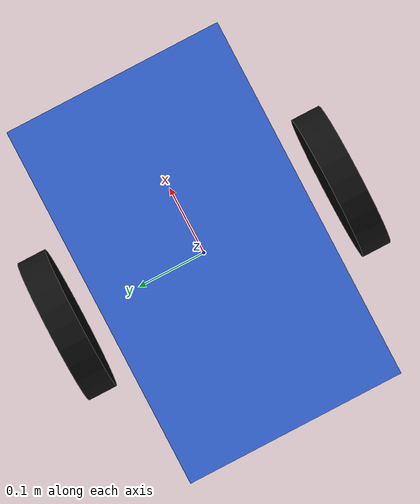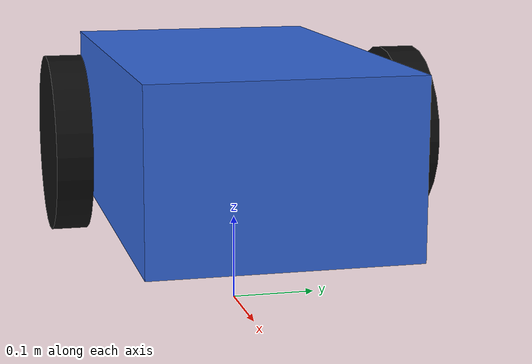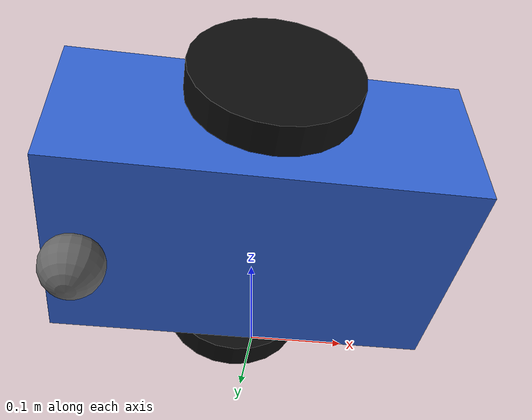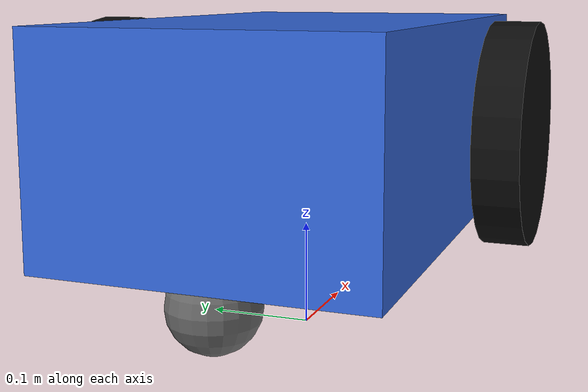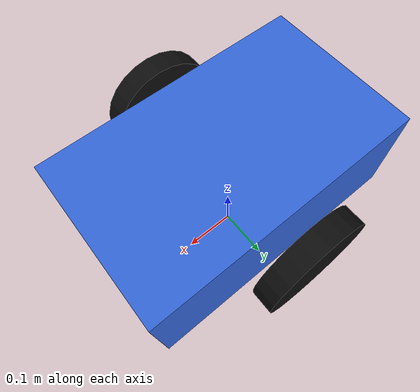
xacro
<?xml version="1.0"?>
<robot xmlns:xacro="http://www.ros.org/wiki/xacro" name="scoutbot">

  <xacro:arg name="use_sim"          default="true"/>
  <xacro:arg name="controllers_yaml" default="$(find scoutbot_control)/config/controllers.yaml"/>

  <xacro:property name="wheel_radius"      value="0.10"/>   <!-- 10 cm -->
  <xacro:property name="wheel_thickness"   value="0.04"/>
  <xacro:property name="wheel_separation"  value="0.40"/>   <!-- track width, m -->
  <xacro:property name="chassis_length"    value="0.50"/>
  <xacro:property name="chassis_width"     value="0.30"/>
  <xacro:property name="chassis_height"    value="0.20"/>
  <xacro:property name="chassis_mass"      value="6.0"/>
  <xacro:property name="wheel_mass"        value="0.5"/>
  <xacro:property name="caster_radius"     value="0.04"/>
  <xacro:property name="caster_mass"       value="0.10"/>

  <!-- Place wheels on the chassis side, at chassis_height/2 down so wheel
       bottom aligns with chassis bottom. -->
  <xacro:property name="wheel_z_offset"   value="${-chassis_height/2 + wheel_radius}"/>

  <!-- =========================================================================
       Reusable inertial macro: solid box.
       ========================================================================= -->
  <xacro:macro name="box_inertia" params="m x y z">
    <inertial>
      <mass value="${m}"/>
      <inertia
        ixx="${m*(y*y + z*z)/12.0}" ixy="0" ixz="0"
        iyy="${m*(x*x + z*z)/12.0}" iyz="0"
        izz="${m*(x*x + y*y)/12.0}"/>
    </inertial>
  </xacro:macro>

  <!-- Solid cylinder along Y axis (the wheel rotation axis). -->
  <xacro:macro name="cylinder_inertia_y" params="m r l">
    <inertial>
      <mass value="${m}"/>
      <inertia
        ixx="${m*(3*r*r + l*l)/12.0}" ixy="0" ixz="0"
        iyy="${m*r*r/2.0}"            iyz="0"
        izz="${m*(3*r*r + l*l)/12.0}"/>
    </inertial>
  </xacro:macro>

  <!-- Solid sphere. -->
  <xacro:macro name="sphere_inertia" params="m r">
    <inertial>
      <mass value="${m}"/>
      <inertia
        ixx="${2*m*r*r/5.0}" ixy="0" ixz="0"
        iyy="${2*m*r*r/5.0}" iyz="0"
        izz="${2*m*r*r/5.0}"/>
    </inertial>
  </xacro:macro>

  <link name="scout_base_footprint"/>

  <link name="scout_base_link">
    <visual>
      <origin xyz="0 0 0" rpy="0 0 0"/>
      <geometry>
        <box size="${chassis_length} ${chassis_width} ${chassis_height}"/>
      </geometry>
      <material name="scout_blue">
        <color rgba="0.20 0.40 0.85 1.0"/>
      </material>
    </visual>
    <collision>
      <origin xyz="0 0 0" rpy="0 0 0"/>
      <geometry>
        <box size="${chassis_length} ${chassis_width} ${chassis_height}"/>
      </geometry>
    </collision>
    <xacro:box_inertia m="${chassis_mass}"
                       x="${chassis_length}"
                       y="${chassis_width}"
                       z="${chassis_height}"/>
  </link>

  <!-- footprint -> base_link: lift chassis so wheel bottoms touch the ground. -->
  <joint name="scout_base_to_footprint" type="fixed">
    <parent link="scout_base_footprint"/>
    <child  link="scout_base_link"/>
    <origin xyz="0 0 ${wheel_radius + chassis_height/2}" rpy="0 0 0"/>
  </joint>

  <xacro:macro name="drive_wheel" params="prefix side_y joint_name">
    <link name="scout_${prefix}_wheel_link">
      <visual>
        <origin xyz="0 0 0" rpy="${pi/2} 0 0"/>
        <geometry>
          <cylinder radius="${wheel_radius}" length="${wheel_thickness}"/>
        </geometry>
        <material name="scout_black">
          <color rgba="0.05 0.05 0.05 1.0"/>
        </material>
      </visual>
      <collision>
        <origin xyz="0 0 0" rpy="${pi/2} 0 0"/>
        <geometry>
          <cylinder radius="${wheel_radius}" length="${wheel_thickness}"/>
        </geometry>
      </collision>
      <xacro:cylinder_inertia_y m="${wheel_mass}"
                                r="${wheel_radius}"
                                l="${wheel_thickness}"/>
    </link>

    <joint name="${joint_name}" type="continuous">
      <parent link="scout_base_link"/>
      <child  link="scout_${prefix}_wheel_link"/>
      <origin xyz="0 ${side_y} ${wheel_z_offset}" rpy="0 0 0"/>
      <axis xyz="0 1 0"/>
      <dynamics damping="0.05" friction="0.05"/>
      <limit effort="20.0" velocity="20.0"/>
    </joint>

    <!-- Higher friction for traction. mu1 along motion, mu2 lateral. -->
    <gazebo reference="scout_${prefix}_wheel_link">
      <mu1>1.2</mu1>
      <mu2>1.0</mu2>
      <kp>1000000.0</kp>
      <kd>100.0</kd>
      <minDepth>0.001</minDepth>
      <material>Gazebo/Black</material>
    </gazebo>
  </xacro:macro>

  <xacro:drive_wheel prefix="left"  side_y="${ wheel_separation/2}" joint_name="scout_left_wheel_joint"/>
  <xacro:drive_wheel prefix="right" side_y="${-wheel_separation/2}" joint_name="scout_right_wheel_joint"/>

  <link name="scout_caster_link">
    <visual>
      <origin xyz="0 0 0" rpy="0 0 0"/>
      <geometry>
        <sphere radius="${caster_radius}"/>
      </geometry>
      <material name="scout_grey">
        <color rgba="0.40 0.40 0.40 1.0"/>
      </material>
    </visual>
    <collision>
      <origin xyz="0 0 0" rpy="0 0 0"/>
      <geometry>
        <sphere radius="${caster_radius}"/>
      </geometry>
    </collision>
    <xacro:sphere_inertia m="${caster_mass}" r="${caster_radius}"/>
  </link>

  <joint name="scout_caster_joint" type="fixed">
    <parent link="scout_base_link"/>
    <child  link="scout_caster_link"/>
    <origin xyz="${-chassis_length/2 + caster_radius} 0
                 ${-chassis_height/2 + caster_radius - (wheel_radius - caster_radius)}"
            rpy="0 0 0"/>
  </joint>

  <!-- Very low friction so the caster rolls/slides freely; otherwise it acts
       as a brake and prevents in-place rotation. -->
  <gazebo reference="scout_caster_link">
    <mu1>0.01</mu1>
    <mu2>0.01</mu2>
    <kp>500000.0</kp>
    <kd>10.0</kd>
    <material>Gazebo/Grey</material>
  </gazebo>

  <link name="scout_imu_link"/>
  <joint name="scout_imu_joint" type="fixed">
    <parent link="scout_base_link"/>
    <child  link="scout_imu_link"/>
    <origin xyz="0 0 ${chassis_height/2 + 0.005}" rpy="0 0 0"/>
  </joint>

  <gazebo reference="scout_base_link">
    <material>Gazebo/Blue</material>
  </gazebo>

  <ros2_control name="ScoutbotGazeboSystem" type="system">
    <hardware>
      <plugin>gazebo_ros2_control/GazeboSystem</plugin>
    </hardware>

    <joint name="scout_left_wheel_joint">
      <command_interface name="velocity">
        <param name="min">-20.0</param>
        <param name="max"> 20.0</param>
      </command_interface>
      <state_interface name="position"/>
      <state_interface name="velocity"/>
    </joint>

    <joint name="scout_right_wheel_joint">
      <command_interface name="velocity">
        <param name="min">-20.0</param>
        <param name="max"> 20.0</param>
      </command_interface>
      <state_interface name="position"/>
      <state_interface name="velocity"/>
    </joint>
  </ros2_control>

  <gazebo>
    <plugin filename="libgazebo_ros2_control.so" name="gazebo_ros2_control">
      <parameters>$(arg controllers_yaml)</parameters>
      <ros>
        <namespace>/scoutbot</namespace>
      </ros>
    </plugin>
  </gazebo>

</robot>
